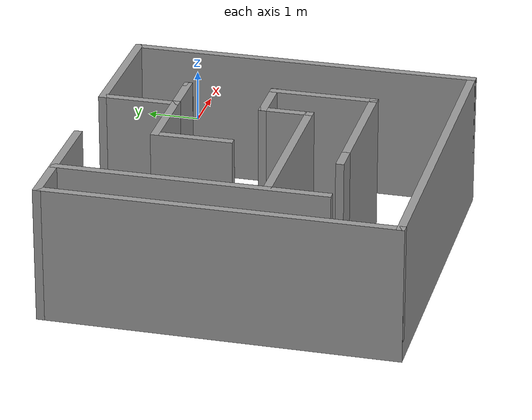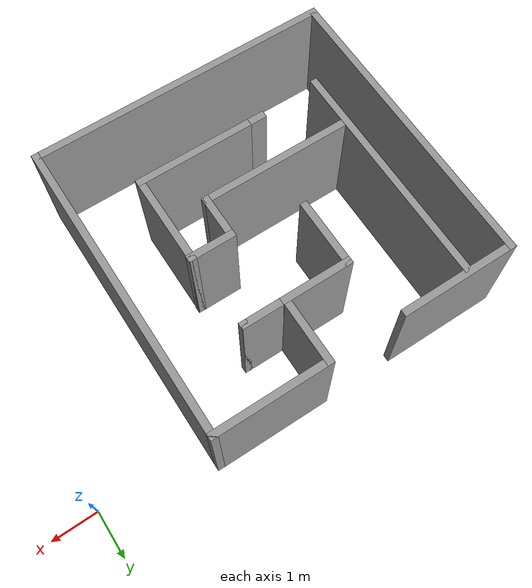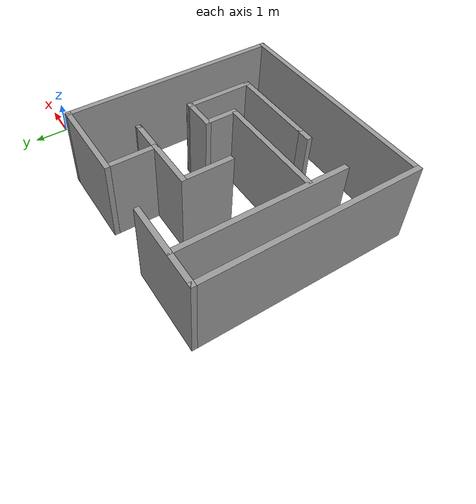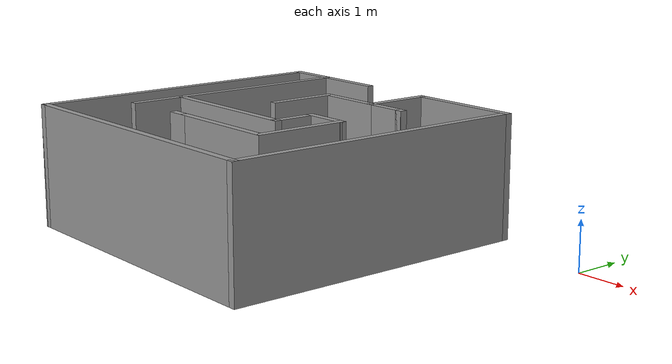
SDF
<?xml version='1.0'?>
<sdf version='1.7'>
  <model name='maze1'>
    <pose>-4.3895 -2.6706 0 0 -0 0</pose>
    <link name='Wall_10'>
      <collision name='Wall_10_Collision'>
        <geometry>
          <box>
            <size>6.5 0.15 2.5</size>
          </box>
        </geometry>
        <pose>0 0 1.25 0 -0 0</pose>
      </collision>
      <visual name='Wall_10_Visual'>
        <pose>0 0 1.25 0 -0 0</pose>
        <geometry>
          <box>
            <size>6.5 0.15 2.5</size>
          </box>
        </geometry>
        <material>
          <script>
            <uri>file://media/materials/scripts/gazebo.material</uri>
            <name>Gazebo/Grey</name>
          </script>
          <ambient>1 1 1 1</ambient>
        </material>
        <meta>
          <layer>0</layer>
        </meta>
      </visual>
      <pose>-4.31449 0 0 0 -0 -1.5708</pose>
    </link>
    <link name='Wall_11'>
      <collision name='Wall_11_Collision'>
        <geometry>
          <box>
            <size>6.5 0.15 2.5</size>
          </box>
        </geometry>
        <pose>0 0 1.25 0 -0 0</pose>
      </collision>
      <visual name='Wall_11_Visual'>
        <pose>0 0 1.25 0 -0 0</pose>
        <geometry>
          <box>
            <size>6.5 0.15 2.5</size>
          </box>
        </geometry>
        <material>
          <script>
            <uri>file://media/materials/scripts/gazebo.material</uri>
            <name>Gazebo/Grey</name>
          </script>
          <ambient>1 1 1 1</ambient>
        </material>
        <meta>
          <layer>0</layer>
        </meta>
      </visual>
      <pose>-1.13949 -3.175 0 0 -0 0</pose>
    </link>
    <link name='Wall_12'>
      <collision name='Wall_12_Collision'>
        <geometry>
          <box>
            <size>6.5 0.15 2.5</size>
          </box>
        </geometry>
        <pose>0 0 1.25 0 -0 0</pose>
      </collision>
      <visual name='Wall_12_Visual'>
        <pose>0 0 1.25 0 -0 0</pose>
        <geometry>
          <box>
            <size>6.5 0.15 2.5</size>
          </box>
        </geometry>
        <material>
          <script>
            <uri>file://media/materials/scripts/gazebo.material</uri>
            <name>Gazebo/Grey</name>
          </script>
          <ambient>1 1 1 1</ambient>
        </material>
        <meta>
          <layer>0</layer>
        </meta>
      </visual>
      <pose>2.03551 0 0 0 -0 1.5708</pose>
    </link>
    <link name='Wall_13'>
      <collision name='Wall_13_Collision'>
        <geometry>
          <box>
            <size>2.5 0.15 2.5</size>
          </box>
        </geometry>
        <pose>0 0 1.25 0 -0 0</pose>
      </collision>
      <visual name='Wall_13_Visual'>
        <pose>0 0 1.25 0 -0 0</pose>
        <geometry>
          <box>
            <size>2.5 0.15 2.5</size>
          </box>
        </geometry>
        <material>
          <script>
            <uri>file://media/materials/scripts/gazebo.material</uri>
            <name>Gazebo/Grey</name>
          </script>
          <ambient>1 1 1 1</ambient>
        </material>
        <meta>
          <layer>0</layer>
        </meta>
      </visual>
      <pose>0.860505 3.175 0 0 -0 3.14159</pose>
    </link>
    <link name='Wall_16'>
      <collision name='Wall_16_Collision'>
        <geometry>
          <box>
            <size>5 0.15 2.5</size>
          </box>
        </geometry>
        <pose>0 0 1.25 0 -0 0</pose>
      </collision>
      <visual name='Wall_16_Visual'>
        <pose>0 0 1.25 0 -0 0</pose>
        <geometry>
          <box>
            <size>5 0.15 2.5</size>
          </box>
        </geometry>
        <material>
          <script>
            <uri>file://media/materials/scripts/gazebo.material</uri>
            <name>Gazebo/Grey</name>
          </script>
          <ambient>1 1 1 1</ambient>
        </material>
        <meta>
          <layer>0</layer>
        </meta>
      </visual>
      <pose>-3.36298 0.727856 0 0 -0 1.5708</pose>
    </link>
    <link name='Wall_24'>
      <collision name='Wall_24_Collision'>
        <geometry>
          <box>
            <size>1.5 0.15 2.5</size>
          </box>
        </geometry>
        <pose>0 0 1.25 0 -0 0</pose>
      </collision>
      <visual name='Wall_24_Visual'>
        <pose>0 0 1.25 0 -0 0</pose>
        <geometry>
          <box>
            <size>1.5 0.15 2.5</size>
          </box>
        </geometry>
        <material>
          <script>
            <uri>file://media/materials/scripts/gazebo.material</uri>
            <name>Gazebo/Grey</name>
          </script>
          <ambient>1 1 1 1</ambient>
        </material>
        <meta>
          <layer>0</layer>
        </meta>
      </visual>
      <pose>-0.314495 2.5 0 0 -0 -1.5708</pose>
    </link>
    <link name='Wall_25'>
      <collision name='Wall_25_Collision'>
        <geometry>
          <box>
            <size>0.16 0.15 2.5</size>
          </box>
        </geometry>
        <pose>0 0 1.25 0 -0 0</pose>
      </collision>
      <visual name='Wall_25_Visual'>
        <pose>0 0 1.25 0 -0 0</pose>
        <geometry>
          <box>
            <size>0.16 0.15 2.5</size>
          </box>
        </geometry>
        <material>
          <script>
            <uri>file://media/materials/scripts/gazebo.material</uri>
            <name>Gazebo/Grey</name>
          </script>
          <ambient>1 1 1 1</ambient>
        </material>
        <meta>
          <layer>0</layer>
        </meta>
      </visual>
      <pose>-0.309495 1.825 0 0 -0 0</pose>
    </link>
    <link name='Wall_26'>
      <collision name='Wall_26_Collision'>
        <geometry>
          <box>
            <size>1.5 0.15 2.5</size>
          </box>
        </geometry>
        <pose>0 0 1.25 0 -0 0</pose>
      </collision>
      <visual name='Wall_26_Visual'>
        <pose>0 0 1.25 0 -0 0</pose>
        <geometry>
          <box>
            <size>1.5 0.15 2.5</size>
          </box>
        </geometry>
        <material>
          <script>
            <uri>file://media/materials/scripts/gazebo.material</uri>
            <name>Gazebo/Grey</name>
          </script>
          <ambient>1 1 1 1</ambient>
        </material>
        <meta>
          <layer>0</layer>
        </meta>
      </visual>
      <pose>-0.979495 1.825 0 0 -0 3.14159</pose>
    </link>
    <link name='Wall_27'>
      <collision name='Wall_27_Collision'>
        <geometry>
          <box>
            <size>1.5 0.15 2.5</size>
          </box>
        </geometry>
        <pose>0 0 1.25 0 -0 0</pose>
      </collision>
      <visual name='Wall_27_Visual'>
        <pose>0 0 1.25 0 -0 0</pose>
        <geometry>
          <box>
            <size>1.5 0.15 2.5</size>
          </box>
        </geometry>
        <material>
          <script>
            <uri>file://media/materials/scripts/gazebo.material</uri>
            <name>Gazebo/Grey</name>
          </script>
          <ambient>1 1 1 1</ambient>
        </material>
        <meta>
          <layer>0</layer>
        </meta>
      </visual>
      <pose>-1.6545 1.15 0 0 -0 -1.5708</pose>
    </link>
    <link name='Wall_29'>
      <collision name='Wall_29_Collision'>
        <geometry>
          <box>
            <size>1 0.15 2.5</size>
          </box>
        </geometry>
        <pose>0 0 1.25 0 -0 0</pose>
      </collision>
      <visual name='Wall_29_Visual'>
        <pose>0 0 1.25 0 -0 0</pose>
        <geometry>
          <box>
            <size>1 0.15 2.5</size>
          </box>
        </geometry>
        <material>
          <script>
            <uri>file://media/materials/scripts/gazebo.material</uri>
            <name>Gazebo/Grey</name>
          </script>
          <ambient>1 1 1 1</ambient>
        </material>
        <meta>
          <layer>0</layer>
        </meta>
      </visual>
      <pose>0.120505 1.825 0 0 -0 0</pose>
    </link>
    <link name='Wall_30'>
      <collision name='Wall_30_Collision'>
        <geometry>
          <box>
            <size>0.16 0.15 2.5</size>
          </box>
        </geometry>
        <pose>0 0 1.25 0 -0 0</pose>
      </collision>
      <visual name='Wall_30_Visual'>
        <pose>0 0 1.25 0 -0 0</pose>
        <geometry>
          <box>
            <size>0.16 0.15 2.5</size>
          </box>
        </geometry>
        <material>
          <script>
            <uri>file://media/materials/scripts/gazebo.material</uri>
            <name>Gazebo/Grey</name>
          </script>
          <ambient>1 1 1 1</ambient>
        </material>
        <meta>
          <layer>0</layer>
        </meta>
      </visual>
      <pose>0.550505 1.825 0 0 -0 0</pose>
    </link>
    <link name='Wall_32'>
      <collision name='Wall_32_Collision'>
        <geometry>
          <box>
            <size>2 0.15 2.5</size>
          </box>
        </geometry>
        <pose>0 0 1.25 0 -0 0</pose>
      </collision>
      <visual name='Wall_32_Visual'>
        <pose>0 0 1.25 0 -0 0</pose>
        <geometry>
          <box>
            <size>2 0.15 2.5</size>
          </box>
        </geometry>
        <material>
          <script>
            <uri>file://media/materials/scripts/gazebo.material</uri>
            <name>Gazebo/Grey</name>
          </script>
          <ambient>1 1 1 1</ambient>
        </material>
        <meta>
          <layer>0</layer>
        </meta>
      </visual>
      <pose>0.652027 -0.704475 0 0 -0 1.5708</pose>
    </link>
    <link name='Wall_33'>
      <collision name='Wall_33_Collision'>
        <geometry>
          <box>
            <size>0.16 0.15 2.5</size>
          </box>
        </geometry>
        <pose>0 0 1.25 0 -0 0</pose>
      </collision>
      <visual name='Wall_33_Visual'>
        <pose>0 0 1.25 0 -0 0</pose>
        <geometry>
          <box>
            <size>0.16 0.15 2.5</size>
          </box>
        </geometry>
        <material>
          <script>
            <uri>file://media/materials/scripts/gazebo.material</uri>
            <name>Gazebo/Grey</name>
          </script>
          <ambient>1 1 1 1</ambient>
        </material>
        <meta>
          <layer>0</layer>
        </meta>
      </visual>
      <pose>0.657027 0.220525 0 0 -0 0</pose>
    </link>
    <link name='Wall_34'>
      <collision name='Wall_34_Collision'>
        <geometry>
          <box>
            <size>1 0.15 2.5</size>
          </box>
        </geometry>
        <pose>0 0 1.25 0 -0 0</pose>
      </collision>
      <visual name='Wall_34_Visual'>
        <pose>0 0 1.25 0 -0 0</pose>
        <geometry>
          <box>
            <size>1 0.15 2.5</size>
          </box>
        </geometry>
        <material>
          <script>
            <uri>file://media/materials/scripts/gazebo.material</uri>
            <name>Gazebo/Grey</name>
          </script>
          <ambient>1 1 1 1</ambient>
        </material>
        <meta>
          <layer>0</layer>
        </meta>
      </visual>
      <pose>0.237027 0.220525 0 0 -0 3.14159</pose>
    </link>
    <link name='Wall_35'>
      <collision name='Wall_35_Collision'>
        <geometry>
          <box>
            <size>1 0.15 2.5</size>
          </box>
        </geometry>
        <pose>0 0 1.25 0 -0 0</pose>
      </collision>
      <visual name='Wall_35_Visual'>
        <pose>0 0 1.25 0 -0 0</pose>
        <geometry>
          <box>
            <size>1 0.15 2.5</size>
          </box>
        </geometry>
        <material>
          <script>
            <uri>file://media/materials/scripts/gazebo.material</uri>
            <name>Gazebo/Grey</name>
          </script>
          <ambient>1 1 1 1</ambient>
        </material>
        <meta>
          <layer>0</layer>
        </meta>
      </visual>
      <pose>-0.187973 -0.204475 0 0 -0 -1.5708</pose>
    </link>
    <link name='Wall_36'>
      <collision name='Wall_36_Collision'>
        <geometry>
          <box>
            <size>3.25 0.15 2.5</size>
          </box>
        </geometry>
        <pose>0 0 1.25 0 -0 0</pose>
      </collision>
      <visual name='Wall_36_Visual'>
        <pose>0 0 1.25 0 -0 0</pose>
        <geometry>
          <box>
            <size>3.25 0.15 2.5</size>
          </box>
        </geometry>
        <material>
          <script>
            <uri>file://media/materials/scripts/gazebo.material</uri>
            <name>Gazebo/Grey</name>
          </script>
          <ambient>1 1 1 1</ambient>
        </material>
        <meta>
          <layer>0</layer>
        </meta>
      </visual>
      <pose>-1.73797 -0.629475 0 0 -0 3.14159</pose>
    </link>
    <link name='Wall_38'>
      <collision name='Wall_38_Collision'>
        <geometry>
          <box>
            <size>2.5 0.15 2.5</size>
          </box>
        </geometry>
        <pose>0 0 1.25 0 -0 0</pose>
      </collision>
      <visual name='Wall_38_Visual'>
        <pose>0 0 1.25 0 -0 0</pose>
        <geometry>
          <box>
            <size>2.5 0.15 2.5</size>
          </box>
        </geometry>
        <material>
          <script>
            <uri>file://media/materials/scripts/gazebo.material</uri>
            <name>Gazebo/Grey</name>
          </script>
          <ambient>1 1 1 1</ambient>
        </material>
        <meta>
          <layer>0</layer>
        </meta>
      </visual>
      <pose>-0.522973 -1.62948 0 0 -0 3.14159</pose>
    </link>
    <link name='Wall_39'>
      <collision name='Wall_39_Collision'>
        <geometry>
          <box>
            <size>0.5 0.15 2.5</size>
          </box>
        </geometry>
        <pose>0 0 1.25 0 -0 0</pose>
      </collision>
      <visual name='Wall_39_Visual'>
        <pose>0 0 1.25 0 -0 0</pose>
        <geometry>
          <box>
            <size>0.5 0.15 2.5</size>
          </box>
        </geometry>
        <material>
          <script>
            <uri>file://media/materials/scripts/gazebo.material</uri>
            <name>Gazebo/Grey</name>
          </script>
          <ambient>1 1 1 1</ambient>
        </material>
        <meta>
          <layer>0</layer>
        </meta>
      </visual>
      <pose>-1.87297 -1.62948 0 0 -0 3.14159</pose>
    </link>
    <link name='Wall_9'>
      <collision name='Wall_9_Collision'>
        <geometry>
          <box>
            <size>2.5 0.15 2.5</size>
          </box>
        </geometry>
        <pose>0 0 1.25 0 -0 0</pose>
      </collision>
      <visual name='Wall_9_Visual'>
        <pose>0 0 1.25 0 -0 0</pose>
        <geometry>
          <box>
            <size>2.5 0.15 2.5</size>
          </box>
        </geometry>
        <material>
          <script>
            <uri>file://media/materials/scripts/gazebo.material</uri>
            <name>Gazebo/Grey</name>
          </script>
          <ambient>1 1 1 1</ambient>
        </material>
        <meta>
          <layer>0</layer>
        </meta>
      </visual>
      <pose>-3.1395 3.175 0 0 -0 3.14159</pose>
    </link>
    <static>1</static>
  </model>
</sdf>
